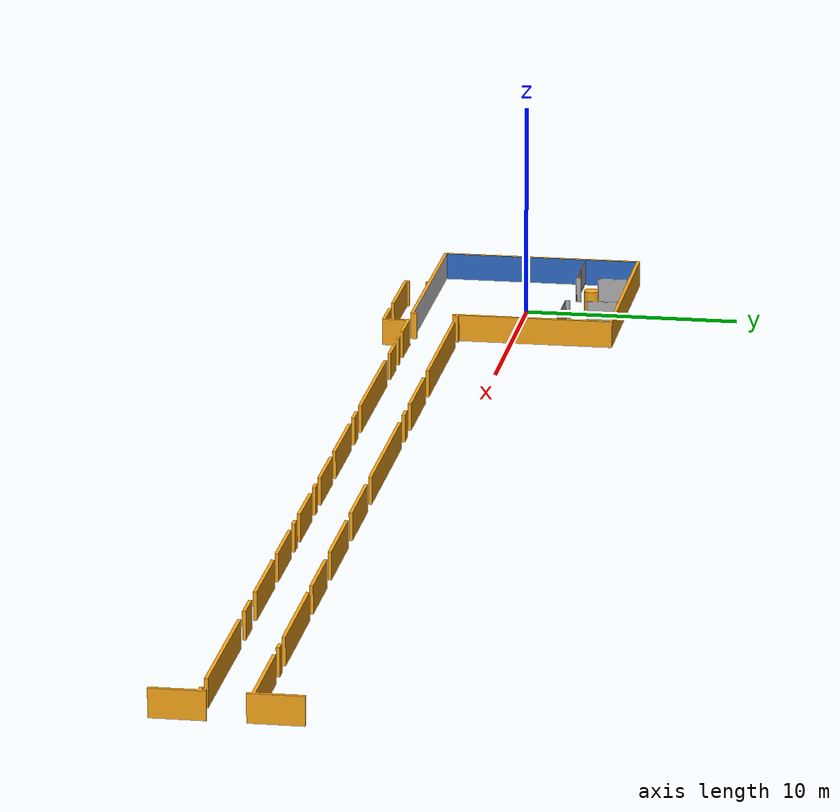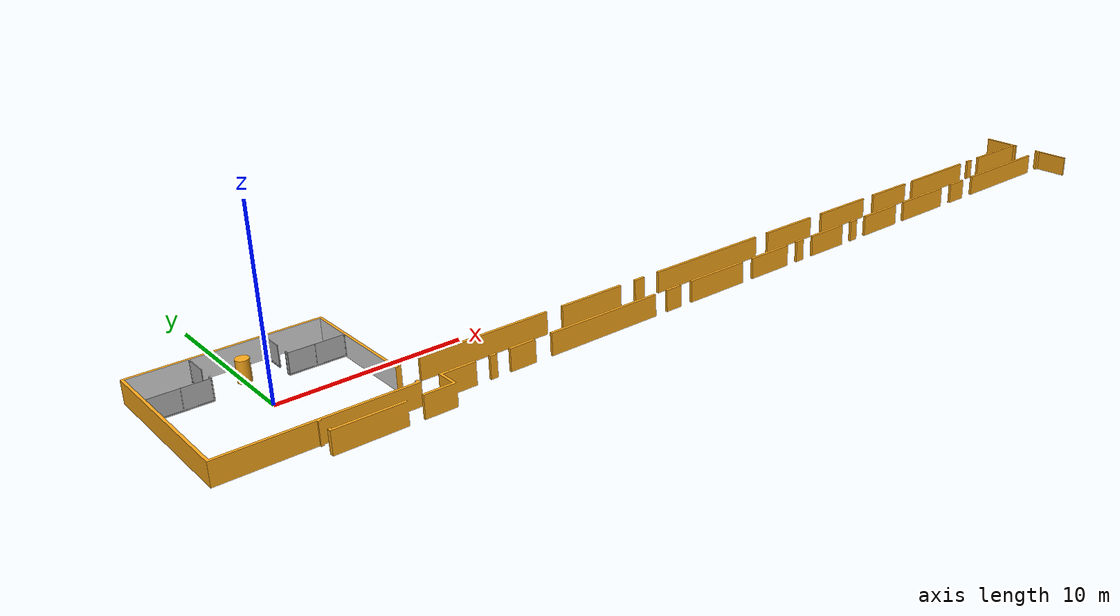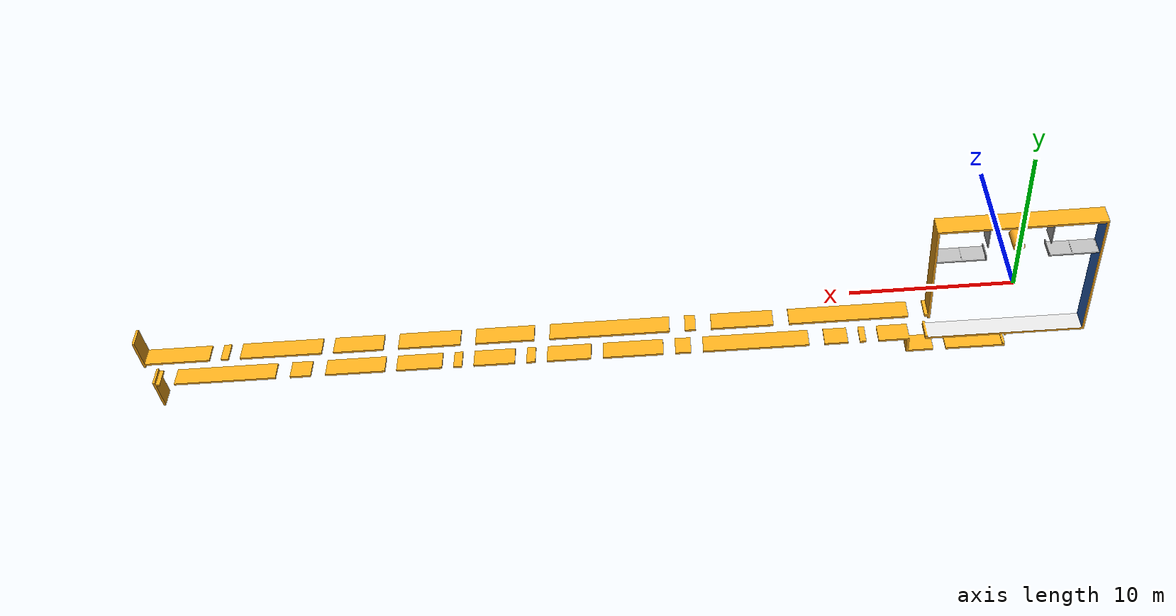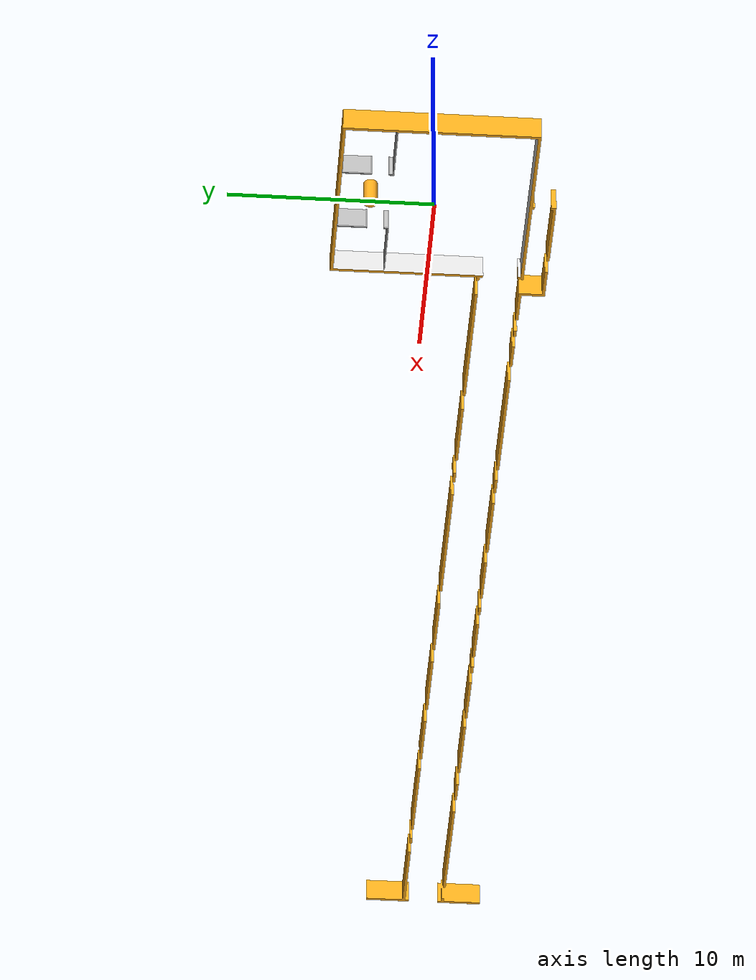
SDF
<?xml version='1.0'?>
<sdf version='1.6'>
  <model name='deec_walls'>
    <link name='walls'>
      <pose frame=''>0 0 0 0 -0 0</pose>
      <inertial>
        <inertia>
          <ixx>1</ixx>
          <ixy>0</ixy>
          <ixz>0</ixz>
          <iyy>1</iyy>
          <iyz>0</iyz>
          <izz>1</izz>
        </inertia>
        <mass>2000</mass>
        <pose frame=''>0 0 0 0 -0 0</pose>
      </inertial>
      <self_collide>0</self_collide>
      <kinematic>0</kinematic>
      <gravity>1</gravity>
      <enable_wind>0</enable_wind>
      <visual name='visual'>
        <pose frame=''>0 0 0 0 -0 0</pose>
        <geometry>
          <mesh>
            <uri>model://deec_walls/meshes/deec_walls.dae</uri>
            <scale>1 1 1</scale>
          </mesh>
        </geometry>
        <cast_shadows>0</cast_shadows>
        <transparency>0</transparency>
        <material>
          <shader type='vertex'>
            <normal_map>__default__</normal_map>
          </shader>
        </material>
      </visual>
      <collision name='collisions'>
        <laser_retro>0</laser_retro>
        <max_contacts>10</max_contacts>
        <pose>0 0 0 0 -0 0</pose>
        <geometry>
          <mesh>
            <uri>model://deec_walls/meshes/deec_walls.dae</uri>
            <scale>1 1 1</scale>
          </mesh>
        </geometry>
        <surface>
          <friction>
            <ode>
              <mu>1</mu>
              <mu2>1</mu2>
              <fdir1>0 0 0</fdir1>
              <slip1>0</slip1>
              <slip2>0</slip2>
            </ode>
            <torsional>
              <coefficient>1</coefficient>
              <patch_radius>0</patch_radius>
              <surface_radius>0</surface_radius>
              <use_patch_radius>1</use_patch_radius>
              <ode>
                <slip>0</slip>
              </ode>
            </torsional>
          </friction>
          <bounce>
            <restitution_coefficient>0</restitution_coefficient>
            <threshold>1e+06</threshold>
          </bounce>
          <contact>
            <collide_without_contact>0</collide_without_contact>
            <collide_without_contact_bitmask>1</collide_without_contact_bitmask>
            <collide_bitmask>1</collide_bitmask>
            <ode>
              <soft_cfm>0</soft_cfm>
              <soft_erp>0.2</soft_erp>
              <kp>1e+13</kp>
              <kd>1</kd>
              <max_vel>0.01</max_vel>
              <min_depth>0</min_depth>
            </ode>
            <bullet>
              <split_impulse>1</split_impulse>
              <split_impulse_penetration_threshold>-0.01</split_impulse_penetration_threshold>
              <soft_cfm>0</soft_cfm>
              <soft_erp>0.2</soft_erp>
              <kp>1e+13</kp>
              <kd>1</kd>
            </bullet>
          </contact>
        </surface>
      </collision>
    </link>
    <static>1</static>
    <allow_auto_disable>1</allow_auto_disable>
  </model>
</sdf>
